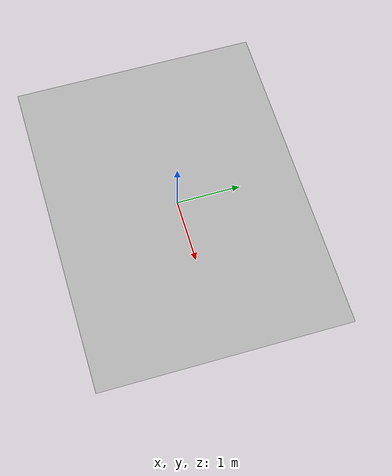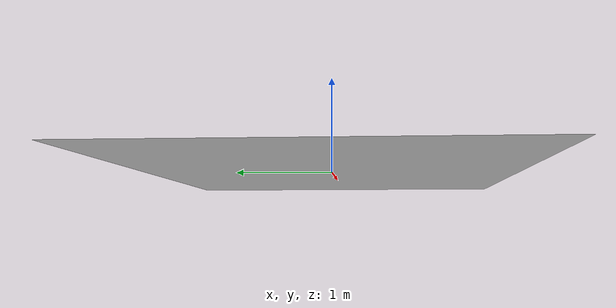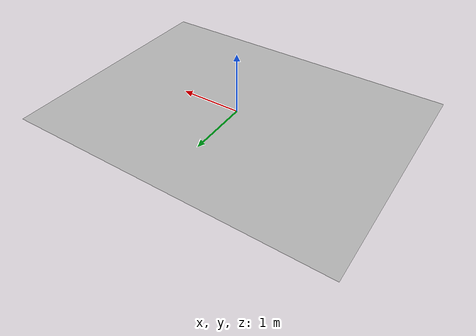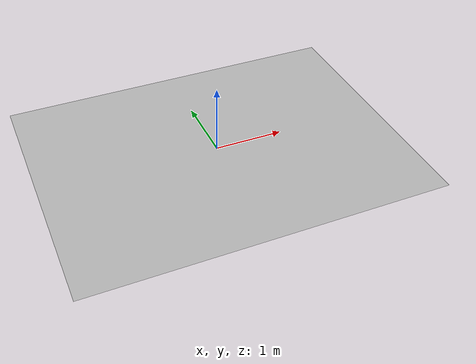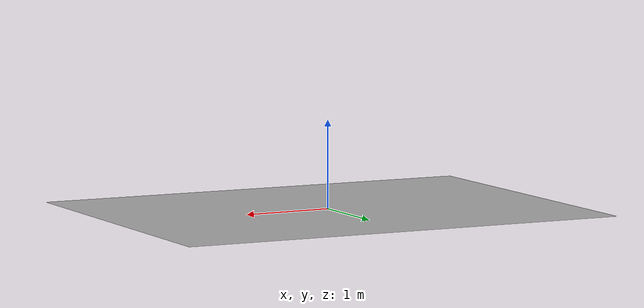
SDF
<?xml version="1.0" ?>
<sdf version="1.5">
  <model name="billboard_3">
    <static>true</static>
      <link name="billboard_3">
        <collision name="billboard-collision">
          <pose>0 0 0 0 0 0</pose>
          <geometry>
            <box>
              <size>0.297 0.42 0.00</size>
            </box>
          </geometry>
        </collision>
        <visual name="billboard-visual">
          <pose>0 0 0 0 0 0</pose>
          <geometry>
            <box>
              <size>5.17 3.88 0.00</size>
            </box>
          </geometry>
          <material>
            <script>
              <uri>model://billboard_3/materials/scripts</uri>
              <uri>model://billboard_3/materials/textures</uri>
              <name>billboard_3/Diffuse</name>
            </script>
          </material>
        </visual>
      </link>
  </model>
</sdf>
